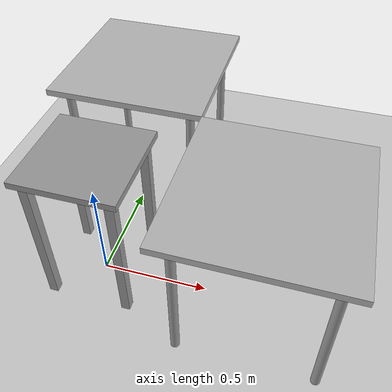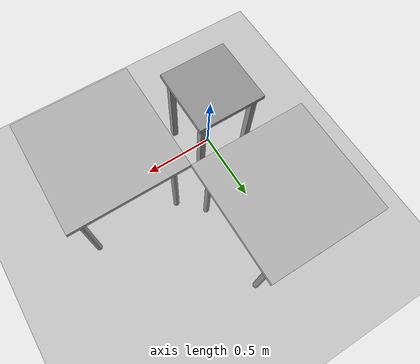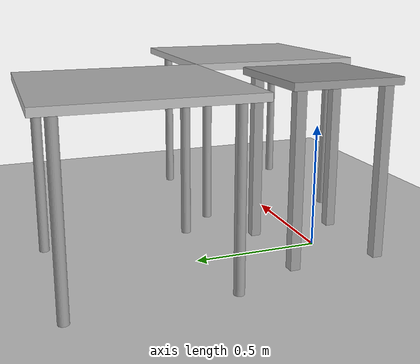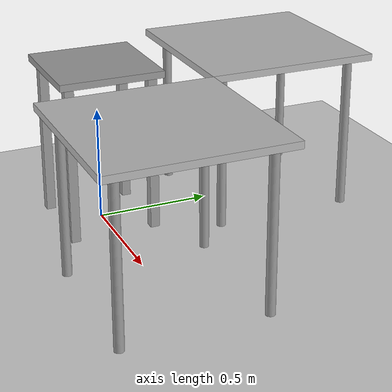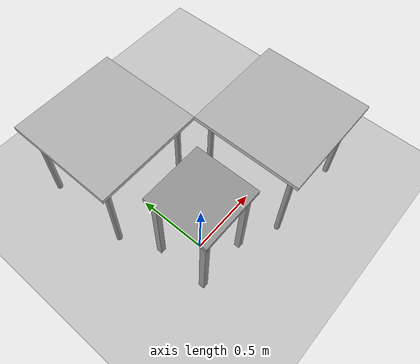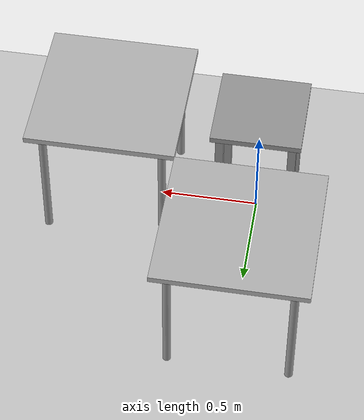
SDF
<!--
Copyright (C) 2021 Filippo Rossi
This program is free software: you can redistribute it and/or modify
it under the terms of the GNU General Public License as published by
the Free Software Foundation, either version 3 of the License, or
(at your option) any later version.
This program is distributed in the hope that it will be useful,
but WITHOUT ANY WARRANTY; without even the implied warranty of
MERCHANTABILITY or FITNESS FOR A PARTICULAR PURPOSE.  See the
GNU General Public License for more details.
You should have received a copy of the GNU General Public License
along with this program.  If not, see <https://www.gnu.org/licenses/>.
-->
<sdf version="1.6">
 <world name="base">
  <gravity>0 0 -9.81</gravity>
  <physics name="default_physics" default="0" type="ode">
   <max_step_size>0.001</max_step_size>
   <real_time_factor>1</real_time_factor>
   <real_time_update_rate>1000</real_time_update_rate>
  </physics>
  <scene><ambient>0.4 0.4 0.4 1</ambient><background>0.7 0.7 0.7 1</background><shadows>0</shadows></scene>
  <include><uri>model://sun</uri></include>
  <include><uri>model://ground_plane</uri></include>
  <model name="ur5_base"><include><uri>model://ur5_base.model</uri></include></model>
  <model name="table">
   <static>true</static>
   <include><uri>model://table.model</uri><pose>0.75 0 0 0 0 0</pose></include>
  </model>
  <model name="table_build">
   <static>true</static>
   <include><uri>model://table_build.model</uri><pose>0 0.75 0 0 0 1.57</pose></include>
  </model>
  <plugin name="x_linker" filename="libx_linker.so"/>
 </world>
</sdf>

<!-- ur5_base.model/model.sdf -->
<sdf version="1.6">
  <model name="ur5_base">
    <static>true</static>

    <link name="top_plate">
      <pose>0 0 0.7 0 0 0</pose>
      <collision name="top_plate_collision">
        <geometry>
          <box>
            <size>0.45 0.45 0.03</size>
          </box>
        </geometry>
        <surface>
          <contact>
            <collide_bitmask>0x01</collide_bitmask>
          </contact>
        </surface>
      </collision>
      <visual name="top_plate_visual">
        <geometry>
          <box>
            <size>0.45 0.45 0.03</size>
          </box>
        </geometry>
        <material>
          <script>
            <uri>file://media/materials/scripts/gazebo.material</uri>
            <name>Gazebo/Grey</name>
          </script>
        </material>
      </visual>
    </link>
    <link name="leg1">
      <pose>0.18 0.18 0.35 0 0 0</pose>
      <collision name="leg1_collision">
        <geometry>
          <box>
            <size>0.04 0.04 0.7</size>
          </box>
        </geometry>
      </collision>
      <visual name="leg1_visual">
        <geometry>
          <box>
            <size>0.04 0.04 0.7</size>
          </box>
        </geometry>
        <material>
          <script>
            <uri>file://media/materials/scripts/gazebo.material</uri>
            <name>Gazebo/Grey</name>
          </script>
        </material>
      </visual>
    </link>
    <link name="leg2">
      <pose>-0.18 0.18 0.35 0 0 0</pose>
      <collision name="leg2_collision">
        <geometry>
          <box>
            <size>0.04 0.04 0.7</size>
          </box>
        </geometry>
      </collision>
      <visual name="leg2_visual">
        <geometry>
          <box>
            <size>0.04 0.04 0.7</size>
          </box>
        </geometry>
        <material>
          <script>
            <uri>file://media/materials/scripts/gazebo.material</uri>
            <name>Gazebo/Grey</name>
          </script>
        </material>
      </visual>
    </link>
    <link name="leg3">
      <pose>0.18 -0.18 0.35 0 0 0</pose>
      <collision name="leg3_collision">
        <geometry>
          <box>
            <size>0.04 0.04 0.7</size>
          </box>
        </geometry>
      </collision>
      <visual name="leg3_visual">
        <geometry>
          <box>
            <size>0.04 0.04 0.7</size>
          </box>
        </geometry>
        <material>
          <script>
            <uri>file://media/materials/scripts/gazebo.material</uri>
            <name>Gazebo/Grey</name>
          </script>
        </material>
      </visual>
    </link>
    <link name="leg4">
      <pose>-0.18 -0.18 0.35 0 0 0</pose>
      <collision name="leg4_collision">
        <geometry>
          <box>
            <size>0.04 0.04 0.7</size>
          </box>
        </geometry>
      </collision>
      <visual name="leg4_visual">
        <geometry>
          <box>
            <size>0.04 0.04 0.7</size>
          </box>
        </geometry>
        <material>
          <script>
            <uri>file://media/materials/scripts/gazebo.material</uri>
            <name>Gazebo/Grey</name>
          </script>
        </material>
      </visual>
    </link>
  </model>
</sdf>

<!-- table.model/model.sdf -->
<sdf version="1.5">
  <model name="table">
    <static>true</static>
    <link name="link">
      <collision name="surface">
        <pose>0 0 0.7 0 0 0</pose>
        <geometry>
          <box>
            <size>0.75 0.75 0.03</size>
          </box>
        </geometry>
        <surface>
          <friction>
            <ode>
              <mu>0.6</mu>
              <mu2>0.6</mu2>
            </ode>
          </friction>
        </surface>
      </collision>
      <visual name="visual1">
        <pose>0 0 0.7 0 0 0</pose>
        <geometry>
          <box>
            <size>0.75 0.75 0.03</size>
          </box>
        </geometry>
        <material>
          <script>
            <uri>model://table.model/materials/scripts/maple.material</uri>
            <name>maple</name>
          </script>
        </material>
      </visual>
      <collision name="front_left_leg">
        <pose>0.30 0.30 0.35 0 0 0</pose>
        <geometry>
          <cylinder>
            <radius>0.02</radius>
            <length>0.7</length>
          </cylinder>
        </geometry>
      </collision>
      <visual name="front_left_leg">
        <pose>0.30 0.30 0.35 0 0 0</pose>
        <geometry>
          <cylinder>
            <radius>0.02</radius>
            <length>0.7</length>
          </cylinder>
        </geometry>
        <material>
          <script>
            <uri>file://media/materials/scripts/gazebo.material</uri>
            <name>Gazebo/Grey</name>
          </script>
        </material>
      </visual>
      <collision name="front_right_leg">
        <pose>0.30 -0.30 0.35 0 0 0</pose>
        <geometry>
          <cylinder>
            <radius>0.02</radius>
            <length>0.7</length>
          </cylinder>
        </geometry>
      </collision>
      <visual name="front_right_leg">
        <pose>0.30 -0.30 0.35 0 0 0</pose>
        <geometry>
          <cylinder>
            <radius>0.02</radius>
            <length>0.7</length>
          </cylinder>
        </geometry>
        <material>
          <script>
            <uri>file://media/materials/scripts/gazebo.material</uri>
            <name>Gazebo/Grey</name>
          </script>
        </material>
      </visual>
      <collision name="back_right_leg">
        <pose>-0.30 -0.30 0.35 0 0 0</pose>
        <geometry>
          <cylinder>
            <radius>0.02</radius>
            <length>0.7</length>
          </cylinder>
        </geometry>
      </collision>
      <visual name="back_right_leg">
        <pose>-0.30 -0.30 0.35 0 0 0</pose>
        <geometry>
          <cylinder>
            <radius>0.02</radius>
            <length>0.7</length>
          </cylinder>
        </geometry>
        <material>
          <script>
            <uri>file://media/materials/scripts/gazebo.material</uri>
            <name>Gazebo/Grey</name>
          </script>
        </material>
      </visual>
      <collision name="back_left_leg">
        <pose>-0.30 0.30 0.35 0 0 0</pose>
        <geometry>
          <cylinder>
            <radius>0.02</radius>
            <length>0.7</length>
          </cylinder>
        </geometry>
      </collision>
      <visual name="back_left_leg">
        <pose>-0.30 0.30 0.35 0 0 0</pose>
        <geometry>
          <cylinder>
            <radius>0.02</radius>
            <length>0.7</length>
          </cylinder>
        </geometry>
        <material>
          <script>
            <uri>file://media/materials/scripts/gazebo.material</uri>
            <name>Gazebo/Grey</name>
          </script>
        </material>
      </visual>
    </link>
  </model>
</sdf>

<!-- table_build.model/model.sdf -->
<sdf version="1.5">
  <model name="table_build">
    <static>true</static>
    <link name="link">
      <collision name="surface">
        <pose>0 0 0.7 0 0 0</pose>
        <geometry>
          <box>
            <size>0.75 0.75 0.03</size>
          </box>
        </geometry>
        <surface>
          <friction>
            <ode>
              <mu>0.6</mu>
              <mu2>0.6</mu2>
            </ode>
          </friction>
        </surface>
      </collision>
      <visual name="visual1">
        <pose>0 0 0.7 0 0 0</pose>
        <geometry>
          <box>
            <size>0.75 0.75 0.03</size>
          </box>
        </geometry>
        <material>
          <script>
            <uri>model://table_build.model/materials/scripts/build.material</uri>
            <name>build</name>
          </script>
        </material>
      </visual>
      <collision name="front_left_leg">
        <pose>0.30 0.30 0.35 0 0 0</pose>
        <geometry>
          <cylinder>
            <radius>0.02</radius>
            <length>0.7</length>
          </cylinder>
        </geometry>
      </collision>
      <visual name="front_left_leg">
        <pose>0.30 0.30 0.35 0 0 0</pose>
        <geometry>
          <cylinder>
            <radius>0.02</radius>
            <length>0.7</length>
          </cylinder>
        </geometry>
        <material>
          <script>
            <uri>file://media/materials/scripts/gazebo.material</uri>
            <name>Gazebo/Grey</name>
          </script>
        </material>
      </visual>
      <collision name="front_right_leg">
        <pose>0.30 -0.30 0.35 0 0 0</pose>
        <geometry>
          <cylinder>
            <radius>0.02</radius>
            <length>0.7</length>
          </cylinder>
        </geometry>
      </collision>
      <visual name="front_right_leg">
        <pose>0.30 -0.30 0.35 0 0 0</pose>
        <geometry>
          <cylinder>
            <radius>0.02</radius>
            <length>0.7</length>
          </cylinder>
        </geometry>
        <material>
          <script>
            <uri>file://media/materials/scripts/gazebo.material</uri>
            <name>Gazebo/Grey</name>
          </script>
        </material>
      </visual>
      <collision name="back_right_leg">
        <pose>-0.30 -0.30 0.35 0 0 0</pose>
        <geometry>
          <cylinder>
            <radius>0.02</radius>
            <length>0.7</length>
          </cylinder>
        </geometry>
      </collision>
      <visual name="back_right_leg">
        <pose>-0.30 -0.30 0.35 0 0 0</pose>
        <geometry>
          <cylinder>
            <radius>0.02</radius>
            <length>0.7</length>
          </cylinder>
        </geometry>
        <material>
          <script>
            <uri>file://media/materials/scripts/gazebo.material</uri>
            <name>Gazebo/Grey</name>
          </script>
        </material>
      </visual>
      <collision name="back_left_leg">
        <pose>-0.30 0.30 0.35 0 0 0</pose>
        <geometry>
          <cylinder>
            <radius>0.02</radius>
            <length>0.7</length>
          </cylinder>
        </geometry>
      </collision>
      <visual name="back_left_leg">
        <pose>-0.30 0.30 0.35 0 0 0</pose>
        <geometry>
          <cylinder>
            <radius>0.02</radius>
            <length>0.7</length>
          </cylinder>
        </geometry>
        <material>
          <script>
            <uri>file://media/materials/scripts/gazebo.material</uri>
            <name>Gazebo/Grey</name>
          </script>
        </material>
      </visual>
    </link>
  </model>
</sdf>
